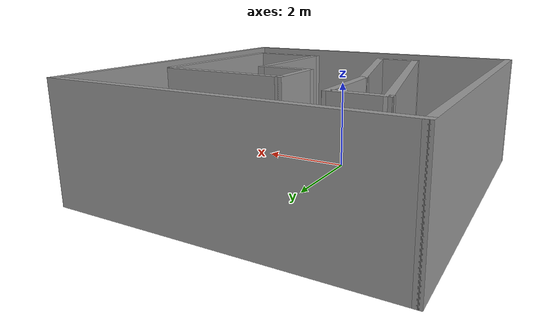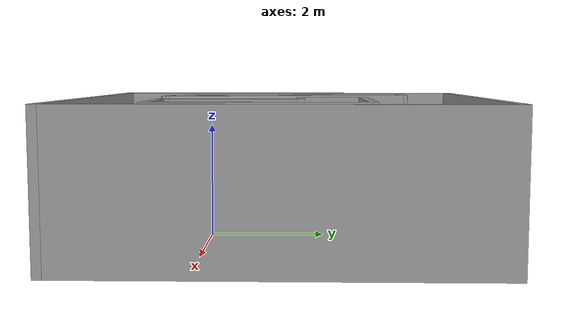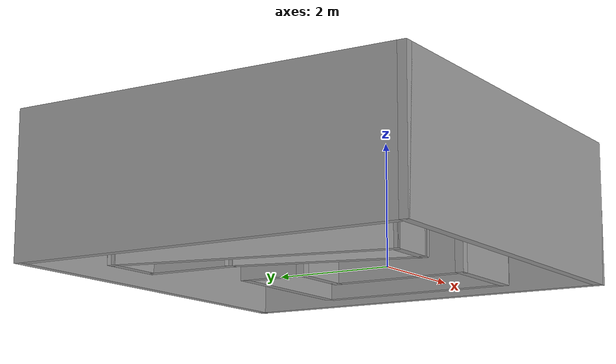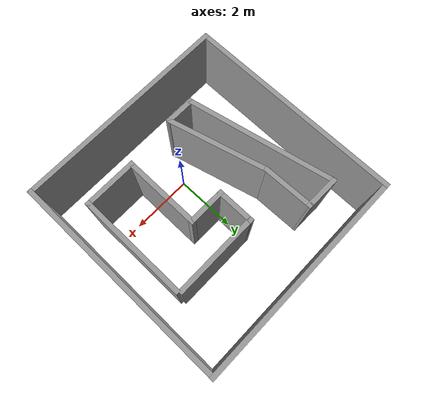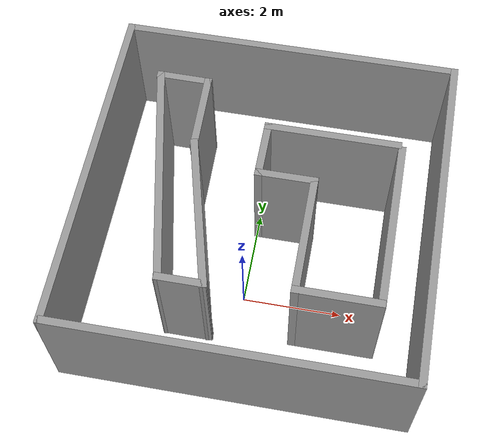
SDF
<?xml version='1.0'?>
<sdf version='1.7'>
  <model name='like_maze_map5'>
    <pose>0.145 1.295 0 0 -0 0</pose>
    <link name='Wall_0'>
      <collision name='Wall_0_Collision'>
        <geometry>
          <box>
            <size>7 0.15 2.5</size>
          </box>
        </geometry>
        <pose>0 0 1.25 0 -0 0</pose>
      </collision>
      <visual name='Wall_0_Visual'>
        <pose>0 0 1.25 0 -0 0</pose>
        <geometry>
          <box>
            <size>7 0.15 2.5</size>
          </box>
        </geometry>
        <material>
          <script>
            <uri>file://media/materials/scripts/gazebo.material</uri>
            <name>Gazebo/Grey</name>
          </script>
          <ambient>1 1 1 1</ambient>
        </material>
        <meta>
          <layer>0</layer>
        </meta>
      </visual>
      <pose>0 -3.425 0 0 -0 0</pose>
    </link>
    <link name='Wall_14'>
      <collision name='Wall_14_Collision'>
        <geometry>
          <box>
            <size>4.77502 0.15 2.5</size>
          </box>
        </geometry>
        <pose>0 0 1.25 0 -0 0</pose>
      </collision>
      <visual name='Wall_14_Visual'>
        <pose>0 0 1.25 0 -0 0</pose>
        <geometry>
          <box>
            <size>4.77502 0.15 2.5</size>
          </box>
        </geometry>
        <material>
          <script>
            <uri>file://media/materials/scripts/gazebo.material</uri>
            <name>Gazebo/Grey</name>
          </script>
          <ambient>1 1 1 1</ambient>
        </material>
        <meta>
          <layer>0</layer>
        </meta>
      </visual>
      <pose>-2.03302 0.03975 0 0 -0 -1.35729</pose>
    </link>
    <link name='Wall_16'>
      <collision name='Wall_16_Collision'>
        <geometry>
          <box>
            <size>1 0.15 2.5</size>
          </box>
        </geometry>
        <pose>0 0 1.25 0 -0 0</pose>
      </collision>
      <visual name='Wall_16_Visual'>
        <pose>0 0 1.25 0 -0 0</pose>
        <geometry>
          <box>
            <size>1 0.15 2.5</size>
          </box>
        </geometry>
        <material>
          <script>
            <uri>file://media/materials/scripts/gazebo.material</uri>
            <name>Gazebo/Grey</name>
          </script>
          <ambient>1 1 1 1</ambient>
        </material>
        <meta>
          <layer>0</layer>
        </meta>
      </visual>
      <pose>-1.11803 -2.22025 0 0 -0 0</pose>
    </link>
    <link name='Wall_18'>
      <collision name='Wall_18_Collision'>
        <geometry>
          <box>
            <size>3.25 0.15 2.5</size>
          </box>
        </geometry>
        <pose>0 0 1.25 0 -0 0</pose>
      </collision>
      <visual name='Wall_18_Visual'>
        <pose>0 0 1.25 0 -0 0</pose>
        <geometry>
          <box>
            <size>3.25 0.15 2.5</size>
          </box>
        </geometry>
        <material>
          <script>
            <uri>file://media/materials/scripts/gazebo.material</uri>
            <name>Gazebo/Grey</name>
          </script>
          <ambient>1 1 1 1</ambient>
        </material>
        <meta>
          <layer>0</layer>
        </meta>
      </visual>
      <pose>-1.09419 -0.723065 0 0 -0 1.8326</pose>
    </link>
    <link name='Wall_19'>
      <collision name='Wall_19_Collision'>
        <geometry>
          <box>
            <size>1.66588 0.15 2.5</size>
          </box>
        </geometry>
        <pose>0 0 1.25 0 -0 0</pose>
      </collision>
      <visual name='Wall_19_Visual'>
        <pose>0 0 1.25 0 -0 0</pose>
        <geometry>
          <box>
            <size>1.66588 0.15 2.5</size>
          </box>
        </geometry>
        <material>
          <script>
            <uri>file://media/materials/scripts/gazebo.material</uri>
            <name>Gazebo/Grey</name>
          </script>
          <ambient>1 1 1 1</ambient>
        </material>
        <meta>
          <layer>0</layer>
        </meta>
      </visual>
      <pose>-1.51419 1.53194 0 0 -0 1.59564</pose>
    </link>
    <link name='Wall_2'>
      <collision name='Wall_2_Collision'>
        <geometry>
          <box>
            <size>7 0.15 2.5</size>
          </box>
        </geometry>
        <pose>0 0 1.25 0 -0 0</pose>
      </collision>
      <visual name='Wall_2_Visual'>
        <pose>0 0 1.25 0 -0 0</pose>
        <geometry>
          <box>
            <size>7 0.15 2.5</size>
          </box>
        </geometry>
        <material>
          <script>
            <uri>file://media/materials/scripts/gazebo.material</uri>
            <name>Gazebo/Grey</name>
          </script>
          <ambient>1 1 1 1</ambient>
        </material>
        <meta>
          <layer>0</layer>
        </meta>
      </visual>
      <pose>-3.425 -0 0 0 -0 1.5708</pose>
    </link>
    <link name='Wall_20'>
      <collision name='Wall_20_Collision'>
        <geometry>
          <box>
            <size>1.14005 0.15 2.5</size>
          </box>
        </geometry>
        <pose>0 0 1.25 0 -0 0</pose>
      </collision>
      <visual name='Wall_20_Visual'>
        <pose>0 0 1.25 0 -0 0</pose>
        <geometry>
          <box>
            <size>1.14005 0.15 2.5</size>
          </box>
        </geometry>
        <material>
          <script>
            <uri>file://media/materials/scripts/gazebo.material</uri>
            <name>Gazebo/Grey</name>
          </script>
          <ambient>1 1 1 1</ambient>
        </material>
        <meta>
          <layer>0</layer>
        </meta>
      </visual>
      <pose>-2.02802 2.29475 0 0 -0 3.13149</pose>
    </link>
    <link name='Wall_29'>
      <collision name='Wall_29_Collision'>
        <geometry>
          <box>
            <size>3.5 0.15 2.5</size>
          </box>
        </geometry>
        <pose>0 0 1.25 0 -0 0</pose>
      </collision>
      <visual name='Wall_29_Visual'>
        <pose>0 0 1.25 0 -0 0</pose>
        <geometry>
          <box>
            <size>3.5 0.15 2.5</size>
          </box>
        </geometry>
        <material>
          <script>
            <uri>file://media/materials/scripts/gazebo.material</uri>
            <name>Gazebo/Grey</name>
          </script>
          <ambient>1 1 1 1</ambient>
        </material>
        <meta>
          <layer>0</layer>
        </meta>
      </visual>
      <pose>2.56697 -0.36525 0 0 -0 -1.5708</pose>
    </link>
    <link name='Wall_3'>
      <collision name='Wall_3_Collision'>
        <geometry>
          <box>
            <size>7 0.15 2.5</size>
          </box>
        </geometry>
        <pose>0 0 1.25 0 -0 0</pose>
      </collision>
      <visual name='Wall_3_Visual'>
        <pose>0 0 1.25 0 -0 0</pose>
        <geometry>
          <box>
            <size>7 0.15 2.5</size>
          </box>
        </geometry>
        <material>
          <script>
            <uri>file://media/materials/scripts/gazebo.material</uri>
            <name>Gazebo/Grey</name>
          </script>
          <ambient>1 1 1 1</ambient>
        </material>
        <meta>
          <layer>0</layer>
        </meta>
      </visual>
      <pose>0 3.425 0 0 -0 0</pose>
    </link>
    <link name='Wall_30'>
      <collision name='Wall_30_Collision'>
        <geometry>
          <box>
            <size>1.73 0.15 2.5</size>
          </box>
        </geometry>
        <pose>0 0 1.25 0 -0 0</pose>
      </collision>
      <visual name='Wall_30_Visual'>
        <pose>0 0 1.25 0 -0 0</pose>
        <geometry>
          <box>
            <size>1.73 0.15 2.5</size>
          </box>
        </geometry>
        <material>
          <script>
            <uri>file://media/materials/scripts/gazebo.material</uri>
            <name>Gazebo/Grey</name>
          </script>
          <ambient>1 1 1 1</ambient>
        </material>
        <meta>
          <layer>0</layer>
        </meta>
      </visual>
      <pose>1.76697 -2.04025 0 0 -0 3.14159</pose>
    </link>
    <link name='Wall_31'>
      <collision name='Wall_31_Collision'>
        <geometry>
          <box>
            <size>2.5 0.15 2.5</size>
          </box>
        </geometry>
        <pose>0 0 1.25 0 -0 0</pose>
      </collision>
      <visual name='Wall_31_Visual'>
        <pose>0 0 1.25 0 -0 0</pose>
        <geometry>
          <box>
            <size>2.5 0.15 2.5</size>
          </box>
        </geometry>
        <material>
          <script>
            <uri>file://media/materials/scripts/gazebo.material</uri>
            <name>Gazebo/Grey</name>
          </script>
          <ambient>1 1 1 1</ambient>
        </material>
        <meta>
          <layer>0</layer>
        </meta>
      </visual>
      <pose>0.976975 -0.86525 0 0 -0 1.5708</pose>
    </link>
    <link name='Wall_32'>
      <collision name='Wall_32_Collision'>
        <geometry>
          <box>
            <size>1.25 0.15 2.5</size>
          </box>
        </geometry>
        <pose>0 0 1.25 0 -0 0</pose>
      </collision>
      <visual name='Wall_32_Visual'>
        <pose>0 0 1.25 0 -0 0</pose>
        <geometry>
          <box>
            <size>1.25 0.15 2.5</size>
          </box>
        </geometry>
        <material>
          <script>
            <uri>file://media/materials/scripts/gazebo.material</uri>
            <name>Gazebo/Grey</name>
          </script>
          <ambient>1 1 1 1</ambient>
        </material>
        <meta>
          <layer>0</layer>
        </meta>
      </visual>
      <pose>0.426975 0.30975 0 0 -0 3.14159</pose>
    </link>
    <link name='Wall_33'>
      <collision name='Wall_33_Collision'>
        <geometry>
          <box>
            <size>1.25 0.15 2.5</size>
          </box>
        </geometry>
        <pose>0 0 1.25 0 -0 0</pose>
      </collision>
      <visual name='Wall_33_Visual'>
        <pose>0 0 1.25 0 -0 0</pose>
        <geometry>
          <box>
            <size>1.25 0.15 2.5</size>
          </box>
        </geometry>
        <material>
          <script>
            <uri>file://media/materials/scripts/gazebo.material</uri>
            <name>Gazebo/Grey</name>
          </script>
          <ambient>1 1 1 1</ambient>
        </material>
        <meta>
          <layer>0</layer>
        </meta>
      </visual>
      <pose>-0.123025 0.85975 0 0 -0 1.5708</pose>
    </link>
    <link name='Wall_34'>
      <collision name='Wall_34_Collision'>
        <geometry>
          <box>
            <size>2.75 0.15 2.5</size>
          </box>
        </geometry>
        <pose>0 0 1.25 0 -0 0</pose>
      </collision>
      <visual name='Wall_34_Visual'>
        <pose>0 0 1.25 0 -0 0</pose>
        <geometry>
          <box>
            <size>2.75 0.15 2.5</size>
          </box>
        </geometry>
        <material>
          <script>
            <uri>file://media/materials/scripts/gazebo.material</uri>
            <name>Gazebo/Grey</name>
          </script>
          <ambient>1 1 1 1</ambient>
        </material>
        <meta>
          <layer>0</layer>
        </meta>
      </visual>
      <pose>1.17698 1.40975 0 0 -0 0</pose>
    </link>
    <link name='Wall_4'>
      <collision name='Wall_4_Collision'>
        <geometry>
          <box>
            <size>7 0.15 2.5</size>
          </box>
        </geometry>
        <pose>0 0 1.25 0 -0 0</pose>
      </collision>
      <visual name='Wall_4_Visual'>
        <pose>0 0 1.25 0 -0 0</pose>
        <geometry>
          <box>
            <size>7 0.15 2.5</size>
          </box>
        </geometry>
        <material>
          <script>
            <uri>file://media/materials/scripts/gazebo.material</uri>
            <name>Gazebo/Grey</name>
          </script>
          <ambient>1 1 1 1</ambient>
        </material>
        <meta>
          <layer>0</layer>
        </meta>
      </visual>
      <pose>3.425 -0 0 0 -0 -1.5708</pose>
    </link>
    <static>1</static>
  </model>
</sdf>
